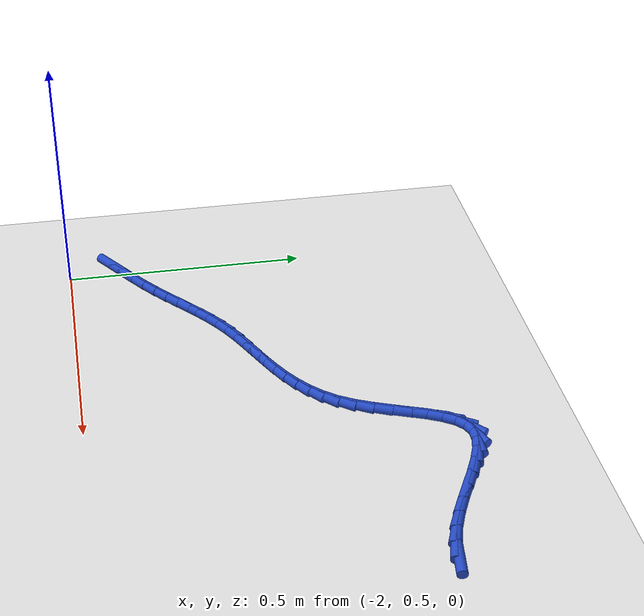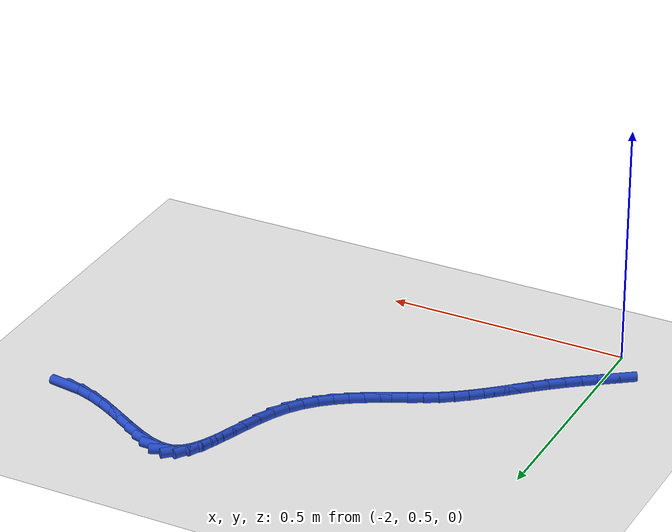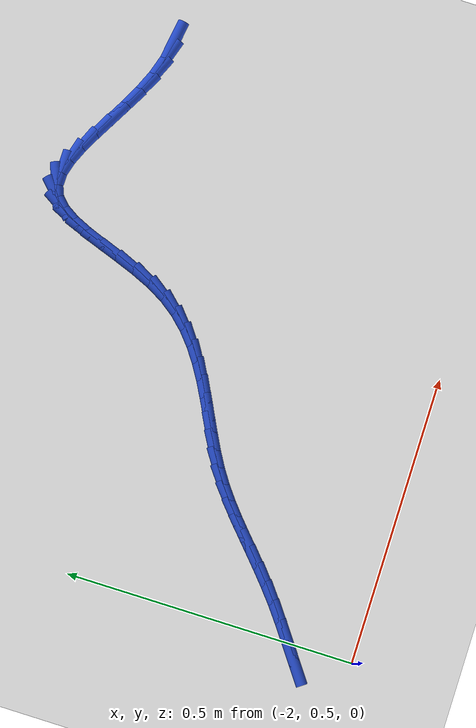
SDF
<sdf version="1.6">
 <world name="default">
  <model name="ground_plane">
   <static>1</static>
   <link name="link">
    <collision name="collision">
     <geometry><plane><normal>0 0 1</normal><size>100 100</size></plane></geometry>
     <surface><friction><ode><mu>100</mu><mu2>50</mu2></ode></friction></surface>
    </collision>
    <visual name="visual">
     <cast_shadows>0</cast_shadows>
     <geometry><plane><normal>0 0 1</normal><size>100 100</size></plane></geometry>
     <material>
      <script><uri>file://media/materials/scripts/gazebo.material</uri><name>Gazebo/WhiteGlow</name></script>
     </material>
    </visual>
   </link>
  </model>
  <model name="line">
   <link name="link_58">
    <pose>-1.0870003627364677 1.1023229426101866 0.01 0 1.57 -0.1475471825724006</pose>
    <collision name="collision">
     <geometry><cylinder><radius>0.01</radius><length>0.08</length></cylinder></geometry>
    </collision>
    <visual name="visual">
     <material>
      <script><name>Gazebo/Blue</name><uri>file://media/materials/scripts/gazebo.material</uri></script>
     </material>
     <geometry><cylinder><radius>0.01</radius><length>0.08</length></cylinder></geometry>
    </visual>
   </link>
   <link name="link_59">
    <pose>-1.1185167927824342 1.1070071444633494 0.01 0 1.57 -0.3058086887024668</pose>
    <collision name="collision">
     <geometry><cylinder><radius>0.01</radius><length>0.08</length></cylinder></geometry>
    </collision>
    <visual name="visual">
     <material>
      <script><name>Gazebo/Blue</name><uri>file://media/materials/scripts/gazebo.material</uri></script>
     </material>
     <geometry><cylinder><radius>0.01</radius><length>0.08</length></cylinder></geometry>
    </visual>
   </link>
   <link name="link_60">
    <pose>-1.150595948049343 1.1171349281578584 0.01 0 1.57 -0.41201638089441356</pose>
    <collision name="collision">
     <geometry><cylinder><radius>0.01</radius><length>0.08</length></cylinder></geometry>
    </collision>
    <visual name="visual">
     <material>
      <script><name>Gazebo/Blue</name><uri>file://media/materials/scripts/gazebo.material</uri></script>
     </material>
     <geometry><cylinder><radius>0.01</radius><length>0.08</length></cylinder></geometry>
    </visual>
   </link>
   <link name="link_61">
    <pose>-1.182835170463545 1.1312244546963202 0.01 0 1.57 -0.4778248007867314</pose>
    <collision name="collision">
     <geometry><cylinder><radius>0.01</radius><length>0.08</length></cylinder></geometry>
    </collision>
    <visual name="visual">
     <material>
      <script><name>Gazebo/Blue</name><uri>file://media/materials/scripts/gazebo.material</uri></script>
     </material>
     <geometry><cylinder><radius>0.01</radius><length>0.08</length></cylinder></geometry>
    </visual>
   </link>
   <link name="link_62">
    <pose>-1.214831801951392 1.1477938850813432 0.01 0 1.57 -0.51074860971089</pose>
    <collision name="collision">
     <geometry><cylinder><radius>0.01</radius><length>0.08</length></cylinder></geometry>
    </collision>
    <visual name="visual">
     <material>
      <script><name>Gazebo/Blue</name><uri>file://media/materials/scripts/gazebo.material</uri></script>
     </material>
     <geometry><cylinder><radius>0.01</radius><length>0.08</length></cylinder></geometry>
    </visual>
   </link>
   <link name="link_63">
    <pose>-1.2461831844392361 1.1653613803155345 0.01 0 1.57 -0.513341934159339</pose>
    <collision name="collision">
     <geometry><cylinder><radius>0.01</radius><length>0.08</length></cylinder></geometry>
    </collision>
    <visual name="visual">
     <material>
      <script><name>Gazebo/Blue</name><uri>file://media/materials/scripts/gazebo.material</uri></script>
     </material>
     <geometry><cylinder><radius>0.01</radius><length>0.08</length></cylinder></geometry>
    </visual>
   </link>
   <link name="link_64">
    <pose>-1.2764866598534277 1.182445101401501 0.01 0 1.57 -0.4826405321373303</pose>
    <collision name="collision">
     <geometry><cylinder><radius>0.01</radius><length>0.08</length></cylinder></geometry>
    </collision>
    <visual name="visual">
     <material>
      <script><name>Gazebo/Blue</name><uri>file://media/materials/scripts/gazebo.material</uri></script>
     </material>
     <geometry><cylinder><radius>0.01</radius><length>0.08</length></cylinder></geometry>
    </visual>
   </link>
   <link name="link_65">
    <pose>-1.3053395701203196 1.197563209341851 0.01 0 1.57 -0.4079966829494138</pose>
    <collision name="collision">
     <geometry><cylinder><radius>0.01</radius><length>0.08</length></cylinder></geometry>
    </collision>
    <visual name="visual">
     <material>
      <script><name>Gazebo/Blue</name><uri>file://media/materials/scripts/gazebo.material</uri></script>
     </material>
     <geometry><cylinder><radius>0.01</radius><length>0.08</length></cylinder></geometry>
    </visual>
   </link>
   <link name="link_66">
    <pose>-1.332339257166263 1.2092338651391914 0.01 0 1.57 -0.2659907479562023</pose>
    <collision name="collision">
     <geometry><cylinder><radius>0.01</radius><length>0.08</length></cylinder></geometry>
    </collision>
    <visual name="visual">
     <material>
      <script><name>Gazebo/Blue</name><uri>file://media/materials/scripts/gazebo.material</uri></script>
     </material>
     <geometry><cylinder><radius>0.01</radius><length>0.08</length></cylinder></geometry>
    </visual>
   </link>
   <link name="link_67">
    <pose>-1.3570830629176087 1.2159752297961304 0.01 0 1.57 -0.01495159284294088</pose>
    <collision name="collision">
     <geometry><cylinder><radius>0.01</radius><length>0.08</length></cylinder></geometry>
    </collision>
    <visual name="visual">
     <material>
      <script><name>Gazebo/Blue</name><uri>file://media/materials/scripts/gazebo.material</uri></script>
     </material>
     <geometry><cylinder><radius>0.01</radius><length>0.08</length></cylinder></geometry>
    </visual>
   </link>
   <link name="link_68">
    <pose>-1.379168329300709 1.2163054643152749 0.01 0 1.57 0.3768326548398783</pose>
    <collision name="collision">
     <geometry><cylinder><radius>0.01</radius><length>0.08</length></cylinder></geometry>
    </collision>
    <visual name="visual">
     <material>
      <script><name>Gazebo/Blue</name><uri>file://media/materials/scripts/gazebo.material</uri></script>
     </material>
     <geometry><cylinder><radius>0.01</radius><length>0.08</length></cylinder></geometry>
    </visual>
   </link>
   <link name="link_69">
    <pose>-1.3982037589802772 1.2087722936006464 0.01 0 1.57 0.7711398958925129</pose>
    <collision name="collision">
     <geometry><cylinder><radius>0.01</radius><length>0.08</length></cylinder></geometry>
    </collision>
    <visual name="visual">
     <material>
      <script><name>Gazebo/Blue</name><uri>file://media/materials/scripts/gazebo.material</uri></script>
     </material>
     <geometry><cylinder><radius>0.01</radius><length>0.08</length></cylinder></geometry>
    </visual>
   </link>
   <link name="link_70">
    <pose>-1.4142717390833326 1.1931561054606499 0.01 0 1.57 1.0154257907812452</pose>
    <collision name="collision">
     <geometry><cylinder><radius>0.01</radius><length>0.08</length></cylinder></geometry>
    </collision>
    <visual name="visual">
     <material>
      <script><name>Gazebo/Blue</name><uri>file://media/materials/scripts/gazebo.material</uri></script>
     </material>
     <geometry><cylinder><radius>0.01</radius><length>0.08</length></cylinder></geometry>
    </visual>
   </link>
   <link name="link_71">
    <pose>-1.428089192201496 1.1708885310755426 0.01 0 1.57 1.1476102558697054</pose>
    <collision name="collision">
     <geometry><cylinder><radius>0.01</radius><length>0.08</length></cylinder></geometry>
    </collision>
    <visual name="visual">
     <material>
      <script><name>Gazebo/Blue</name><uri>file://media/materials/scripts/gazebo.material</uri></script>
     </material>
     <geometry><cylinder><radius>0.01</radius><length>0.08</length></cylinder></geometry>
    </visual>
   </link>
   <link name="link_72">
    <pose>-1.4404174362641253 1.1435167310345187 0.01 0 1.57 1.2119681571283645</pose>
    <collision name="collision">
     <geometry><cylinder><radius>0.01</radius><length>0.08</length></cylinder></geometry>
    </collision>
    <visual name="visual">
     <material>
      <script><name>Gazebo/Blue</name><uri>file://media/materials/scripts/gazebo.material</uri></script>
     </material>
     <geometry><cylinder><radius>0.01</radius><length>0.08</length></cylinder></geometry>
    </visual>
   </link>
   <link name="link_73">
    <pose>-1.4520177892005763 1.1125878659267725 0.01 0 1.57 1.2312788049737375</pose>
    <collision name="collision">
     <geometry><cylinder><radius>0.01</radius><length>0.08</length></cylinder></geometry>
    </collision>
    <visual name="visual">
     <material>
      <script><name>Gazebo/Blue</name><uri>file://media/materials/scripts/gazebo.material</uri></script>
     </material>
     <geometry><cylinder><radius>0.01</radius><length>0.08</length></cylinder></geometry>
    </visual>
   </link>
   <link name="link_74">
    <pose>-1.4636515689402056 1.079649096341498 0.01 0 1.57 1.2145752423151026</pose>
    <collision name="collision">
     <geometry><cylinder><radius>0.01</radius><length>0.08</length></cylinder></geometry>
    </collision>
    <visual name="visual">
     <material>
      <script><name>Gazebo/Blue</name><uri>file://media/materials/scripts/gazebo.material</uri></script>
     </material>
     <geometry><cylinder><radius>0.01</radius><length>0.08</length></cylinder></geometry>
    </visual>
   </link>
   <link name="link_75">
    <pose>-1.4760800934123701 1.0462475828678903 0.01 0 1.57 1.162396304330501</pose>
    <collision name="collision">
     <geometry><cylinder><radius>0.01</radius><length>0.08</length></cylinder></geometry>
    </collision>
    <visual name="visual">
     <material>
      <script><name>Gazebo/Blue</name><uri>file://media/materials/scripts/gazebo.material</uri></script>
     </material>
     <geometry><cylinder><radius>0.01</radius><length>0.08</length></cylinder></geometry>
    </visual>
   </link>
   <link name="link_76">
    <pose>-1.4900646805464262 1.0139304860951441 0.01 0 1.57 1.0686533678102415</pose>
    <collision name="collision">
     <geometry><cylinder><radius>0.01</radius><length>0.08</length></cylinder></geometry>
    </collision>
    <visual name="visual">
     <material>
      <script><name>Gazebo/Blue</name><uri>file://media/materials/scripts/gazebo.material</uri></script>
     </material>
     <geometry><cylinder><radius>0.01</radius><length>0.08</length></cylinder></geometry>
    </visual>
   </link>
   <link name="link_77">
    <pose>-1.5063656278139845 0.9842431879429584 0.01 0 1.57 0.9392548024299215</pose>
    <collision name="collision">
     <geometry><cylinder><radius>0.01</radius><length>0.08</length></cylinder></geometry>
    </collision>
    <visual name="visual">
     <material>
      <script><name>Gazebo/Blue</name><uri>file://media/materials/scripts/gazebo.material</uri></script>
     </material>
     <geometry><cylinder><radius>0.01</radius><length>0.08</length></cylinder></geometry>
    </visual>
   </link>
   <link name="link_78">
    <pose>-1.5254284855537938 0.9581824624870069 0.01 0 1.57 0.813549574716762</pose>
    <collision name="collision">
     <geometry><cylinder><radius>0.01</radius><length>0.08</length></cylinder></geometry>
    </collision>
    <visual name="visual">
     <material>
      <script><name>Gazebo/Blue</name><uri>file://media/materials/scripts/gazebo.material</uri></script>
     </material>
     <geometry><cylinder><radius>0.01</radius><length>0.08</length></cylinder></geometry>
    </visual>
   </link>
   <link name="link_79">
    <pose>-1.5469406737404972 0.9354236539276257 0.01 0 1.57 0.7037525218019477</pose>
    <collision name="collision">
     <geometry><cylinder><radius>0.01</radius><length>0.08</length></cylinder></geometry>
    </collision>
    <visual name="visual">
     <material>
      <script><name>Gazebo/Blue</name><uri>file://media/materials/scripts/gazebo.material</uri></script>
     </material>
     <geometry><cylinder><radius>0.01</radius><length>0.08</length></cylinder></geometry>
    </visual>
   </link>
   <link name="link_80">
    <pose>-1.570477771270965 0.9154471661904198 0.01 0 1.57 0.6138549272366713</pose>
    <collision name="collision">
     <geometry><cylinder><radius>0.01</radius><length>0.08</length></cylinder></geometry>
    </collision>
    <visual name="visual">
     <material>
      <script><name>Gazebo/Blue</name><uri>file://media/materials/scripts/gazebo.material</uri></script>
     </material>
     <geometry><cylinder><radius>0.01</radius><length>0.08</length></cylinder></geometry>
    </visual>
   </link>
   <link name="link_81">
    <pose>-1.5956153570420673 0.8977334032009933 0.01 0 1.57 0.5455019838256255</pose>
    <collision name="collision">
     <geometry><cylinder><radius>0.01</radius><length>0.08</length></cylinder></geometry>
    </collision>
    <visual name="visual">
     <material>
      <script><name>Gazebo/Blue</name><uri>file://media/materials/scripts/gazebo.material</uri></script>
     </material>
     <geometry><cylinder><radius>0.01</radius><length>0.08</length></cylinder></geometry>
    </visual>
   </link>
   <link name="link_82">
    <pose>-1.621929009950673 0.881762768884951 0.01 0 1.57 0.4988970211248397</pose>
    <collision name="collision">
     <geometry><cylinder><radius>0.01</radius><length>0.08</length></cylinder></geometry>
    </collision>
    <visual name="visual">
     <material>
      <script><name>Gazebo/Blue</name><uri>file://media/materials/scripts/gazebo.material</uri></script>
     </material>
     <geometry><cylinder><radius>0.01</radius><length>0.08</length></cylinder></geometry>
    </visual>
   </link>
   <link name="link_83">
    <pose>-1.648994308893653 0.8670156671678978 0.01 0 1.57 0.4737275309232719</pose>
    <collision name="collision">
     <geometry><cylinder><radius>0.01</radius><length>0.08</length></cylinder></geometry>
    </collision>
    <visual name="visual">
     <material>
      <script><name>Gazebo/Blue</name><uri>file://media/materials/scripts/gazebo.material</uri></script>
     </material>
     <geometry><cylinder><radius>0.01</radius><length>0.08</length></cylinder></geometry>
    </visual>
   </link>
   <link name="link_84">
    <pose>-1.6763868327678764 0.852972501975438 0.01 0 1.57 0.46981736255604745</pose>
    <collision name="collision">
     <geometry><cylinder><radius>0.01</radius><length>0.08</length></cylinder></geometry>
    </collision>
    <visual name="visual">
     <material>
      <script><name>Gazebo/Blue</name><uri>file://media/materials/scripts/gazebo.material</uri></script>
     </material>
     <geometry><cylinder><radius>0.01</radius><length>0.08</length></cylinder></geometry>
    </visual>
   </link>
   <link name="link_85">
    <pose>-1.703682160470214 0.8391136772331766 0.01 0 1.57 0.4874756127713755</pose>
    <collision name="collision">
     <geometry><cylinder><radius>0.01</radius><length>0.08</length></cylinder></geometry>
    </collision>
    <visual name="visual">
     <material>
      <script><name>Gazebo/Blue</name><uri>file://media/materials/scripts/gazebo.material</uri></script>
     </material>
     <geometry><cylinder><radius>0.01</radius><length>0.08</length></cylinder></geometry>
    </visual>
   </link>
   <link name="link_86">
    <pose>-1.730455870897535 0.8249195968667185 0.01 0 1.57 0.527577140013965</pose>
    <collision name="collision">
     <geometry><cylinder><radius>0.01</radius><length>0.08</length></cylinder></geometry>
    </collision>
    <visual name="visual">
     <material>
      <script><name>Gazebo/Blue</name><uri>file://media/materials/scripts/gazebo.material</uri></script>
     </material>
     <geometry><cylinder><radius>0.01</radius><length>0.08</length></cylinder></geometry>
    </visual>
   </link>
   <link name="link_87">
    <pose>-1.7562835429467092 0.8098706648016678 0.01 0 1.57 0.5892439732104909</pose>
    <collision name="collision">
     <geometry><cylinder><radius>0.01</radius><length>0.08</length></cylinder></geometry>
    </collision>
    <visual name="visual">
     <material>
      <script><name>Gazebo/Blue</name><uri>file://media/materials/scripts/gazebo.material</uri></script>
     </material>
     <geometry><cylinder><radius>0.01</radius><length>0.08</length></cylinder></geometry>
    </visual>
   </link>
   <link name="link_88">
    <pose>-1.7807890718894146 0.7934896684824853 0.01 0 1.57 0.6505062852586484</pose>
    <collision name="collision">
     <geometry><cylinder><radius>0.01</radius><length>0.08</length></cylinder></geometry>
    </collision>
    <visual name="visual">
     <material>
      <script><name>Gazebo/Blue</name><uri>file://media/materials/scripts/gazebo.material</uri></script>
     </material>
     <geometry><cylinder><radius>0.01</radius><length>0.08</length></cylinder></geometry>
    </visual>
   </link>
   <link name="link_89">
    <pose>-1.8041053534733353 0.77574589473108 0.01 0 1.57 0.6964521795092693</pose>
    <collision name="collision">
     <geometry><cylinder><radius>0.01</radius><length>0.08</length></cylinder></geometry>
    </collision>
    <visual name="visual">
     <material>
      <script><name>Gazebo/Blue</name><uri>file://media/materials/scripts/gazebo.material</uri></script>
     </material>
     <geometry><cylinder><radius>0.01</radius><length>0.08</length></cylinder></geometry>
    </visual>
   </link>
   <link name="link_90">
    <pose>-1.826670273312975 0.7568761699731209 0.01 0 1.57 0.7259515918624716</pose>
    <collision name="collision">
     <geometry><cylinder><radius>0.01</radius><length>0.08</length></cylinder></geometry>
    </collision>
    <visual name="visual">
     <material>
      <script><name>Gazebo/Blue</name><uri>file://media/materials/scripts/gazebo.material</uri></script>
     </material>
     <geometry><cylinder><radius>0.01</radius><length>0.08</length></cylinder></geometry>
    </visual>
   </link>
   <link name="link_91">
    <pose>-1.8489258453163866 0.737120942007116 0.01 0 1.57 0.738971548790733</pose>
    <collision name="collision">
     <geometry><cylinder><radius>0.01</radius><length>0.08</length></cylinder></geometry>
    </collision>
    <visual name="visual">
     <material>
      <script><name>Gazebo/Blue</name><uri>file://media/materials/scripts/gazebo.material</uri></script>
     </material>
     <geometry><cylinder><radius>0.01</radius><length>0.08</length></cylinder></geometry>
    </visual>
   </link>
   <link name="link_92">
    <pose>-1.8713140833916238 0.716720658631574 0.01 0 1.57 0.7361317992898</pose>
    <collision name="collision">
     <geometry><cylinder><radius>0.01</radius><length>0.08</length></cylinder></geometry>
    </collision>
    <visual name="visual">
     <material>
      <script><name>Gazebo/Blue</name><uri>file://media/materials/scripts/gazebo.material</uri></script>
     </material>
     <geometry><cylinder><radius>0.01</radius><length>0.08</length></cylinder></geometry>
    </visual>
   </link>
   <link name="link_93">
    <pose>-1.894277001446739 0.695915767645003 0.01 0 1.57 0.7185202803863024</pose>
    <collision name="collision">
     <geometry><cylinder><radius>0.01</radius><length>0.08</length></cylinder></geometry>
    </collision>
    <visual name="visual">
     <material>
      <script><name>Gazebo/Blue</name><uri>file://media/materials/scripts/gazebo.material</uri></script>
     </material>
     <geometry><cylinder><radius>0.01</radius><length>0.08</length></cylinder></geometry>
    </visual>
   </link>
   <link name="link_94">
    <pose>-1.9182566133897858 0.674946716845912 0.01 0 1.57 0.68762105930446</pose>
    <collision name="collision">
     <geometry><cylinder><radius>0.01</radius><length>0.08</length></cylinder></geometry>
    </collision>
    <visual name="visual">
     <material>
      <script><name>Gazebo/Blue</name><uri>file://media/materials/scripts/gazebo.material</uri></script>
     </material>
     <geometry><cylinder><radius>0.01</radius><length>0.08</length></cylinder></geometry>
    </visual>
   </link>
   <link name="link_95">
    <pose>-1.9436941778293262 0.6540537129922732 0.01 0 1.57 0.6523314740369605</pose>
    <collision name="collision">
     <geometry><cylinder><radius>0.01</radius><length>0.08</length></cylinder></geometry>
    </collision>
    <visual name="visual">
     <material>
      <script><name>Gazebo/Blue</name><uri>file://media/materials/scripts/gazebo.material</uri></script>
     </material>
     <geometry><cylinder><radius>0.01</radius><length>0.08</length></cylinder></geometry>
    </visual>
   </link>
   <link name="link_96">
    <pose>-1.970748841208789 0.6333869317108053 0.01 0 1.57 0.6301607725514312</pose>
    <collision name="collision">
     <geometry><cylinder><radius>0.01</radius><length>0.08</length></cylinder></geometry>
    </collision>
    <visual name="visual">
     <material>
      <script><name>Gazebo/Blue</name><uri>file://media/materials/scripts/gazebo.material</uri></script>
     </material>
     <geometry><cylinder><radius>0.01</radius><length>0.08</length></cylinder></geometry>
    </visual>
   </link>
   <link name="link_97">
    <pose>-1.998876114327134 0.6128719956989651 0.01 0 1.57 0.6221215530325486</pose>
    <collision name="collision">
     <geometry><cylinder><radius>0.01</radius><length>0.08</length></cylinder></geometry>
    </collision>
    <visual name="visual">
     <material>
      <script><name>Gazebo/Blue</name><uri>file://media/materials/scripts/gazebo.material</uri></script>
     </material>
     <geometry><cylinder><radius>0.01</radius><length>0.08</length></cylinder></geometry>
    </visual>
   </link>
   <link name="link_98">
    <pose>-2.0274236251622346 0.592400098751008 0.01 0 1.57 0.6275168733877625</pose>
    <collision name="collision">
     <geometry><cylinder><radius>0.01</radius><length>0.08</length></cylinder></geometry>
    </collision>
    <visual name="visual">
     <material>
      <script><name>Gazebo/Blue</name><uri>file://media/materials/scripts/gazebo.material</uri></script>
     </material>
     <geometry><cylinder><radius>0.01</radius><length>0.08</length></cylinder></geometry>
    </visual>
   </link>
  </model>
 </world>
</sdf>
